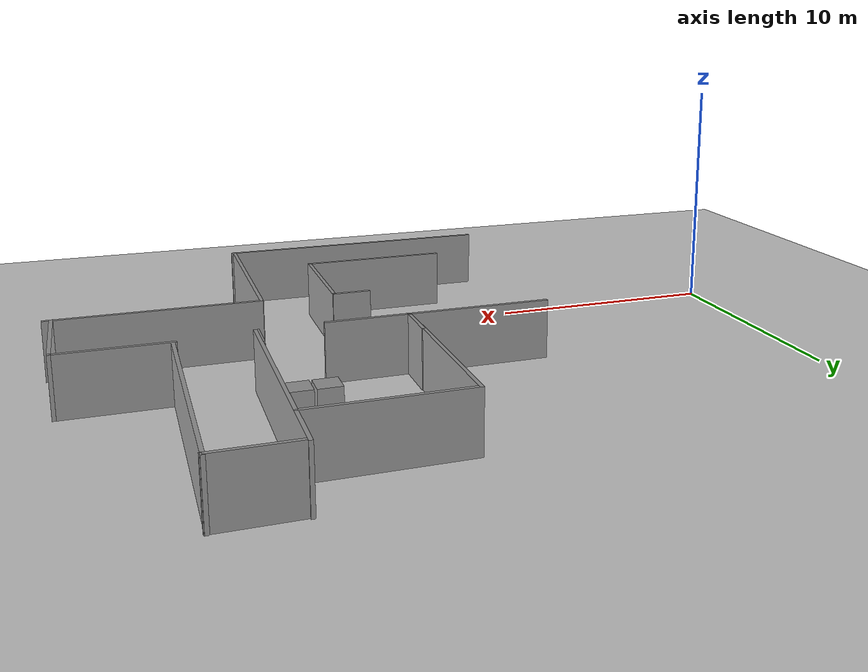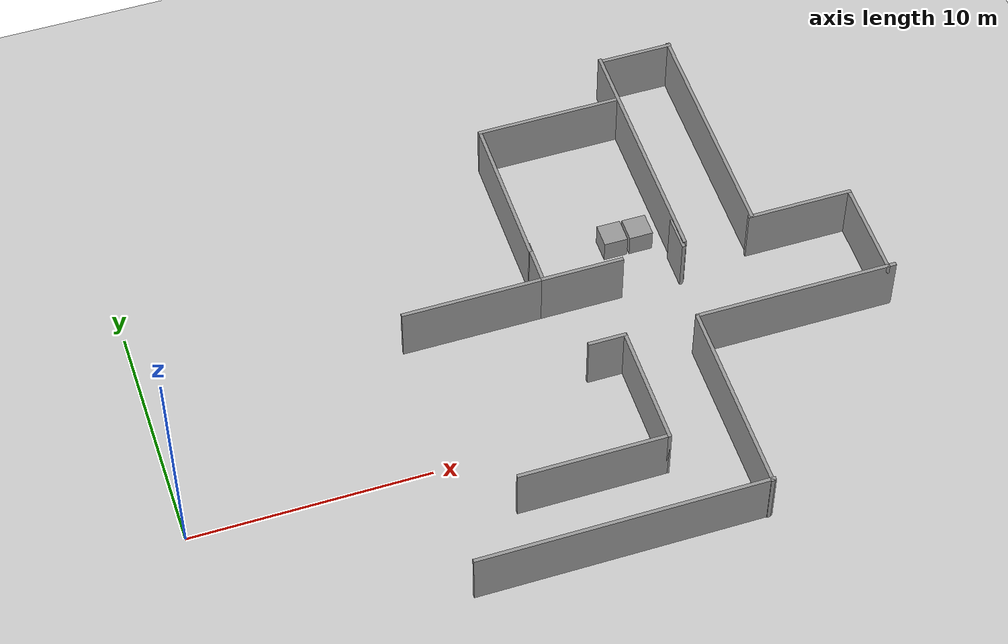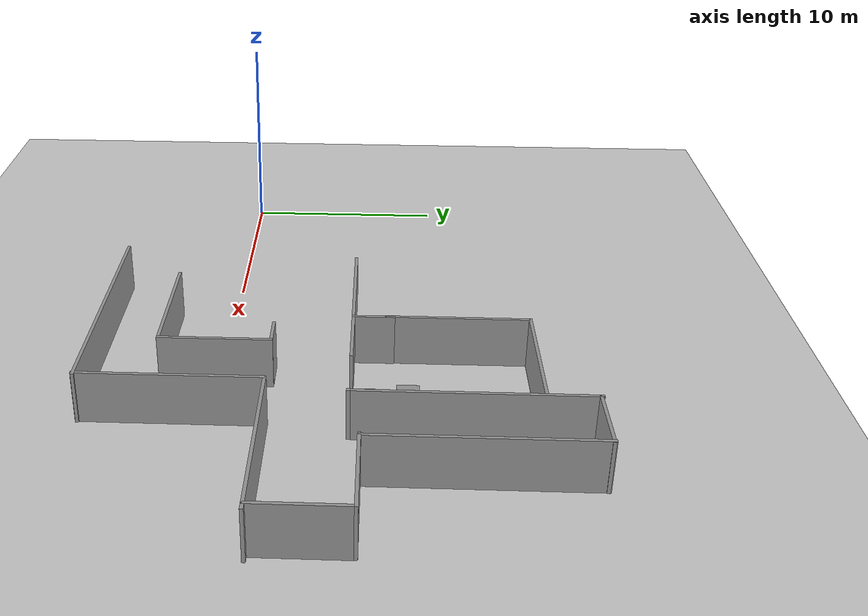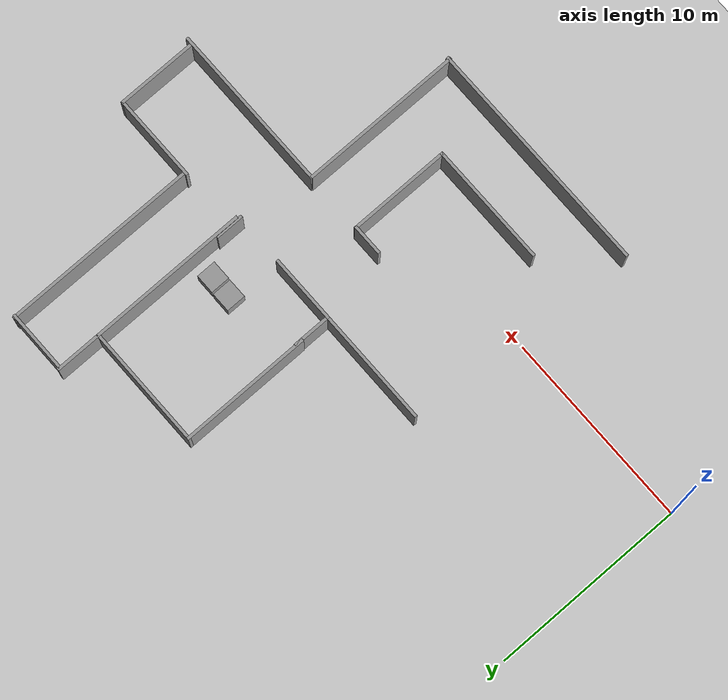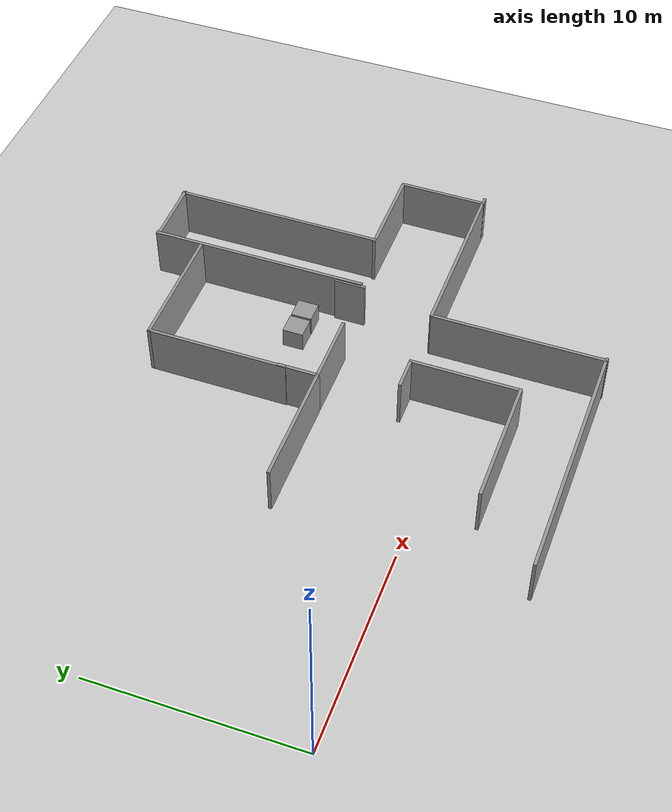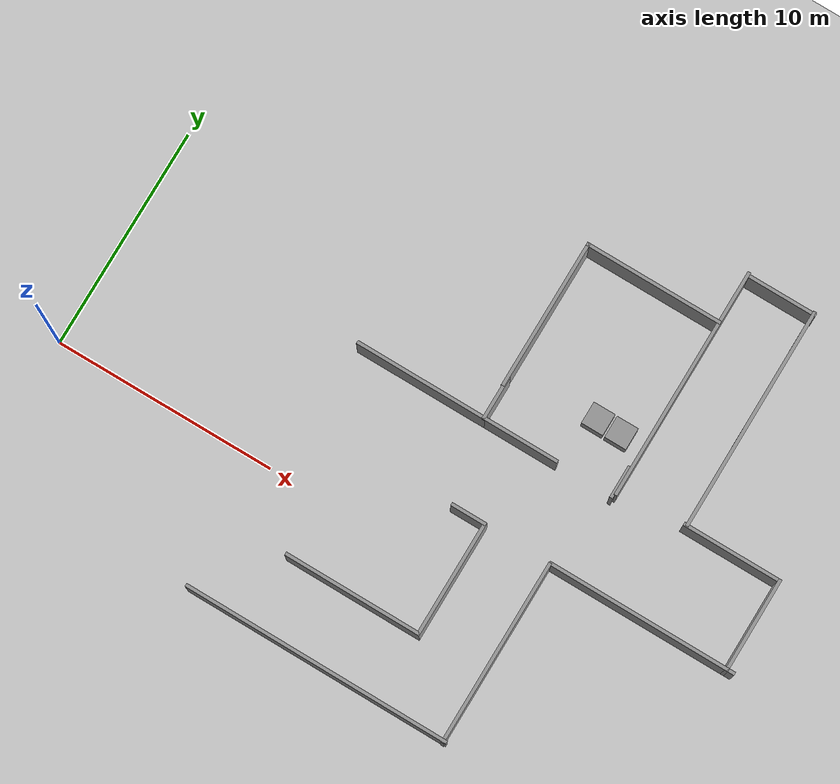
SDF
<sdf version="1.7">
 <world name="default">
  <model name="ground_plane">
   <static>1</static>
   <link name="link">
    <collision name="collision">
     <geometry><plane><normal>0 0 1</normal><size>100 100</size></plane></geometry>
     <surface><friction><ode><mu>100</mu><mu2>50</mu2></ode></friction></surface>
    </collision>
    <visual name="visual">
     <cast_shadows>0</cast_shadows>
     <geometry><plane><normal>0 0 1</normal><size>100 100</size></plane></geometry>
     <material>
      <script><uri>file://media/materials/scripts/gazebo.material</uri><name>Gazebo/Grey</name></script>
     </material>
    </visual>
   </link>
  </model>
  <model name="clutter_env023">
   <link name="Wall_11">
    <pose>15.101 5.75731 0 0 -0 1.5708</pose>
    <inertial>
     <inertia><ixx>0</ixx><ixy>0</ixy><ixz>0</ixz><iyy>0</iyy><iyz>0</iyz><izz>0</izz></inertia>
     <mass>0</mass>
    </inertial>
    <visual name="Wall_11_Visual">
     <pose>0 0 1.25 0 -0 0</pose>
     <geometry><box><size>10.0758 0.15 2.5</size></box></geometry>
     <material>
      <script><uri>file://media/materials/scripts/gazebo.material</uri><name>Gazebo/Grey</name></script>
      <ambient>1 1 1 1</ambient>
      <shader type="pixel"/>
     </material>
     <meta><layer>0</layer></meta>
    </visual>
    <collision name="Wall_11_Collision">
     <pose>0 0 1.25 0 -0 0</pose>
     <geometry><box><size>10.0758 0.15 2.5</size></box></geometry>
     <surface>
      <friction>
       <ode><mu>1</mu><mu2>1</mu2><fdir1>0 0 0</fdir1><slip1>0</slip1><slip2>0</slip2></ode>
       <torsional>
        <coefficient>1</coefficient>
        <patch_radius>0</patch_radius>
        <surface_radius>0</surface_radius>
        <use_patch_radius>1</use_patch_radius>
        <ode><slip>0</slip></ode>
       </torsional>
      </friction>
      <bounce><restitution_coefficient>0</restitution_coefficient><threshold>1e+06</threshold></bounce>
      <contact>
       <collide_without_contact>0</collide_without_contact>
       <collide_without_contact_bitmask>1</collide_without_contact_bitmask>
       <collide_bitmask>1</collide_bitmask>
       <ode>
        <soft_cfm>0</soft_cfm>
        <soft_erp>0.2</soft_erp>
        <kp>1e+13</kp>
        <kd>1</kd>
        <max_vel>0.01</max_vel>
        <min_depth>0</min_depth>
       </ode>
       <bullet>
        <split_impulse>1</split_impulse>
        <split_impulse_penetration_threshold>-0.01</split_impulse_penetration_threshold>
        <soft_cfm>0</soft_cfm>
        <soft_erp>0.2</soft_erp>
        <kp>1e+13</kp>
        <kd>1</kd>
       </bullet>
      </contact>
     </surface>
    </collision>
   </link>
   <link name="Wall_13">
    <pose>12.0364 5.56961 0 0 -0 1.5708</pose>
    <inertial>
     <inertia><ixx>0</ixx><ixy>0</ixy><ixz>0</ixz><iyy>0</iyy><iyz>0</iyz><izz>0</izz></inertia>
     <mass>0</mass>
    </inertial>
    <visual name="Wall_13_Visual">
     <pose>0 0 1.25 0 -0 0</pose>
     <geometry><box><size>10.4977 0.15 2.5</size></box></geometry>
     <material>
      <script><uri>file://media/materials/scripts/gazebo.material</uri><name>Gazebo/Grey</name></script>
      <ambient>1 1 1 1</ambient>
      <shader type="pixel"/>
     </material>
     <meta><layer>0</layer></meta>
    </visual>
    <collision name="Wall_13_Collision">
     <pose>0 0 1.25 0 -0 0</pose>
     <geometry><box><size>10.4977 0.15 2.5</size></box></geometry>
     <surface>
      <friction>
       <ode><mu>1</mu><mu2>1</mu2><fdir1>0 0 0</fdir1><slip1>0</slip1><slip2>0</slip2></ode>
       <torsional>
        <coefficient>1</coefficient>
        <patch_radius>0</patch_radius>
        <surface_radius>0</surface_radius>
        <use_patch_radius>1</use_patch_radius>
        <ode><slip>0</slip></ode>
       </torsional>
      </friction>
      <bounce><restitution_coefficient>0</restitution_coefficient><threshold>1e+06</threshold></bounce>
      <contact>
       <collide_without_contact>0</collide_without_contact>
       <collide_without_contact_bitmask>1</collide_without_contact_bitmask>
       <collide_bitmask>1</collide_bitmask>
       <ode>
        <soft_cfm>0</soft_cfm>
        <soft_erp>0.2</soft_erp>
        <kp>1e+13</kp>
        <kd>1</kd>
        <max_vel>0.01</max_vel>
        <min_depth>0</min_depth>
       </ode>
       <bullet>
        <split_impulse>1</split_impulse>
        <split_impulse_penetration_threshold>-0.01</split_impulse_penetration_threshold>
        <soft_cfm>0</soft_cfm>
        <soft_erp>0.2</soft_erp>
        <kp>1e+13</kp>
        <kd>1</kd>
       </bullet>
      </contact>
     </surface>
    </collision>
   </link>
   <link name="Wall_14">
    <pose>8.975 8.45 0 0 -0 3.14159</pose>
    <visual name="Wall_14_Visual">
     <pose>0 0 1.25 0 -0 0</pose>
     <geometry><box><size>6.25 0.15 2.5</size></box></geometry>
     <material>
      <script><uri>file://media/materials/scripts/gazebo.material</uri><name>Gazebo/Grey</name></script>
      <ambient>1 1 1 1</ambient>
      <shader type="pixel"/>
     </material>
     <meta><layer>0</layer></meta>
    </visual>
    <collision name="Wall_14_Collision">
     <pose>0 0 1.25 0 -0 0</pose>
     <geometry><box><size>6.25 0.15 2.5</size></box></geometry>
     <surface>
      <friction>
       <ode><mu>1</mu><mu2>1</mu2><fdir1>0 0 0</fdir1><slip1>0</slip1><slip2>0</slip2></ode>
       <torsional>
        <coefficient>1</coefficient>
        <patch_radius>0</patch_radius>
        <surface_radius>0</surface_radius>
        <use_patch_radius>1</use_patch_radius>
        <ode><slip>0</slip></ode>
       </torsional>
      </friction>
      <bounce><restitution_coefficient>0</restitution_coefficient><threshold>1e+06</threshold></bounce>
      <contact>
       <collide_without_contact>0</collide_without_contact>
       <collide_without_contact_bitmask>1</collide_without_contact_bitmask>
       <collide_bitmask>1</collide_bitmask>
       <ode>
        <soft_cfm>0</soft_cfm>
        <soft_erp>0.2</soft_erp>
        <kp>1e+13</kp>
        <kd>1</kd>
        <max_vel>0.01</max_vel>
        <min_depth>0</min_depth>
       </ode>
       <bullet>
        <split_impulse>1</split_impulse>
        <split_impulse_penetration_threshold>-0.01</split_impulse_penetration_threshold>
        <soft_cfm>0</soft_cfm>
        <soft_erp>0.2</soft_erp>
        <kp>1e+13</kp>
        <kd>1</kd>
       </bullet>
      </contact>
     </surface>
    </collision>
   </link>
   <link name="Wall_15">
    <pose>5.925 5.15 0 0 0 -1.5708</pose>
    <visual name="Wall_15_Visual">
     <pose>0 0 1.25 0 -0 0</pose>
     <geometry><box><size>6.75 0.15 2.5</size></box></geometry>
     <material>
      <script><uri>file://media/materials/scripts/gazebo.material</uri><name>Gazebo/Grey</name></script>
      <ambient>1 1 1 1</ambient>
      <shader type="pixel"/>
     </material>
     <meta><layer>0</layer></meta>
    </visual>
    <collision name="Wall_15_Collision">
     <pose>0 0 1.25 0 -0 0</pose>
     <geometry><box><size>6.75 0.15 2.5</size></box></geometry>
     <surface>
      <friction>
       <ode><mu>1</mu><mu2>1</mu2><fdir1>0 0 0</fdir1><slip1>0</slip1><slip2>0</slip2></ode>
       <torsional>
        <coefficient>1</coefficient>
        <patch_radius>0</patch_radius>
        <surface_radius>0</surface_radius>
        <use_patch_radius>1</use_patch_radius>
        <ode><slip>0</slip></ode>
       </torsional>
      </friction>
      <bounce><restitution_coefficient>0</restitution_coefficient><threshold>1e+06</threshold></bounce>
      <contact>
       <collide_without_contact>0</collide_without_contact>
       <collide_without_contact_bitmask>1</collide_without_contact_bitmask>
       <collide_bitmask>1</collide_bitmask>
       <ode>
        <soft_cfm>0</soft_cfm>
        <soft_erp>0.2</soft_erp>
        <kp>1e+13</kp>
        <kd>1</kd>
        <max_vel>0.01</max_vel>
        <min_depth>0</min_depth>
       </ode>
       <bullet>
        <split_impulse>1</split_impulse>
        <split_impulse_penetration_threshold>-0.01</split_impulse_penetration_threshold>
        <soft_cfm>0</soft_cfm>
        <soft_erp>0.2</soft_erp>
        <kp>1e+13</kp>
        <kd>1</kd>
       </bullet>
      </contact>
     </surface>
    </collision>
   </link>
   <link name="Wall_27">
    <pose>3.03081 0.283447 0 0 -0 0</pose>
    <visual name="Wall_27_Visual">
     <pose>0 0 1.25 0 -0 0</pose>
     <geometry><box><size>6 0.15 2.5</size></box></geometry>
     <material>
      <script><uri>file://media/materials/scripts/gazebo.material</uri><name>Gazebo/Grey</name></script>
      <ambient>1 1 1 1</ambient>
      <shader type="pixel"/>
     </material>
     <meta><layer>0</layer></meta>
    </visual>
    <collision name="Wall_27_Collision">
     <pose>0 0 1.25 0 -0 0</pose>
     <geometry><box><size>6 0.15 2.5</size></box></geometry>
     <surface>
      <friction>
       <ode><mu>1</mu><mu2>1</mu2><fdir1>0 0 0</fdir1><slip1>0</slip1><slip2>0</slip2></ode>
       <torsional>
        <coefficient>1</coefficient>
        <patch_radius>0</patch_radius>
        <surface_radius>0</surface_radius>
        <use_patch_radius>1</use_patch_radius>
        <ode><slip>0</slip></ode>
       </torsional>
      </friction>
      <bounce><restitution_coefficient>0</restitution_coefficient><threshold>1e+06</threshold></bounce>
      <contact>
       <collide_without_contact>0</collide_without_contact>
       <collide_without_contact_bitmask>1</collide_without_contact_bitmask>
       <collide_bitmask>1</collide_bitmask>
       <ode>
        <soft_cfm>0</soft_cfm>
        <soft_erp>0.2</soft_erp>
        <kp>1e+13</kp>
        <kd>1</kd>
        <max_vel>0.01</max_vel>
        <min_depth>0</min_depth>
       </ode>
       <bullet>
        <split_impulse>1</split_impulse>
        <split_impulse_penetration_threshold>-0.01</split_impulse_penetration_threshold>
        <soft_cfm>0</soft_cfm>
        <soft_erp>0.2</soft_erp>
        <kp>1e+13</kp>
        <kd>1</kd>
       </bullet>
      </contact>
     </surface>
    </collision>
   </link>
   <link name="Wall_28">
    <pose>5.95581 1.20845 0 0 -0 1.5708</pose>
    <visual name="Wall_28_Visual">
     <pose>0 0 1.25 0 -0 0</pose>
     <geometry><box><size>2 0.15 2.5</size></box></geometry>
     <material>
      <script><uri>file://media/materials/scripts/gazebo.material</uri><name>Gazebo/Grey</name></script>
      <ambient>1 1 1 1</ambient>
      <shader type="pixel"/>
     </material>
     <meta><layer>0</layer></meta>
    </visual>
    <collision name="Wall_28_Collision">
     <pose>0 0 1.25 0 -0 0</pose>
     <geometry><box><size>2 0.15 2.5</size></box></geometry>
     <surface>
      <friction>
       <ode><mu>1</mu><mu2>1</mu2><fdir1>0 0 0</fdir1><slip1>0</slip1><slip2>0</slip2></ode>
       <torsional>
        <coefficient>1</coefficient>
        <patch_radius>0</patch_radius>
        <surface_radius>0</surface_radius>
        <use_patch_radius>1</use_patch_radius>
        <ode><slip>0</slip></ode>
       </torsional>
      </friction>
      <bounce><restitution_coefficient>0</restitution_coefficient><threshold>1e+06</threshold></bounce>
      <contact>
       <collide_without_contact>0</collide_without_contact>
       <collide_without_contact_bitmask>1</collide_without_contact_bitmask>
       <collide_bitmask>1</collide_bitmask>
       <ode>
        <soft_cfm>0</soft_cfm>
        <soft_erp>0.2</soft_erp>
        <kp>1e+13</kp>
        <kd>1</kd>
        <max_vel>0.01</max_vel>
        <min_depth>0</min_depth>
       </ode>
       <bullet>
        <split_impulse>1</split_impulse>
        <split_impulse_penetration_threshold>-0.01</split_impulse_penetration_threshold>
        <soft_cfm>0</soft_cfm>
        <soft_erp>0.2</soft_erp>
        <kp>1e+13</kp>
        <kd>1</kd>
       </bullet>
      </contact>
     </surface>
    </collision>
   </link>
   <link name="Wall_2_clone_0_clone">
    <pose>11.2085 -7.50081 0 0 -0 1.5708</pose>
    <inertial>
     <inertia><ixx>0</ixx><ixy>0</ixy><ixz>0</ixz><iyy>0</iyy><iyz>0</iyz><izz>0</izz></inertia>
     <mass>0</mass>
    </inertial>
    <visual name="Wall_2_Visual">
     <pose>0 0 1.25 0 -0 0</pose>
     <geometry><box><size>8.33804 0.15 2.5</size></box></geometry>
     <material>
      <script><uri>file://media/materials/scripts/gazebo.material</uri><name>Gazebo/Grey</name></script>
      <ambient>1 1 1 1</ambient>
      <shader type="pixel"/>
     </material>
     <meta><layer>0</layer></meta>
    </visual>
    <collision name="Wall_2_Collision">
     <pose>0 0 1.25 0 -0 0</pose>
     <geometry><box><size>8.33804 0.15 2.5</size></box></geometry>
     <surface>
      <friction>
       <ode><mu>1</mu><mu2>1</mu2><fdir1>0 0 0</fdir1><slip1>0</slip1><slip2>0</slip2></ode>
       <torsional>
        <coefficient>1</coefficient>
        <patch_radius>0</patch_radius>
        <surface_radius>0</surface_radius>
        <use_patch_radius>1</use_patch_radius>
        <ode><slip>0</slip></ode>
       </torsional>
      </friction>
      <bounce><restitution_coefficient>0</restitution_coefficient><threshold>1e+06</threshold></bounce>
      <contact>
       <collide_without_contact>0</collide_without_contact>
       <collide_without_contact_bitmask>1</collide_without_contact_bitmask>
       <collide_bitmask>1</collide_bitmask>
       <ode>
        <soft_cfm>0</soft_cfm>
        <soft_erp>0.2</soft_erp>
        <kp>1e+13</kp>
        <kd>1</kd>
        <max_vel>0.01</max_vel>
        <min_depth>0</min_depth>
       </ode>
       <bullet>
        <split_impulse>1</split_impulse>
        <split_impulse_penetration_threshold>-0.01</split_impulse_penetration_threshold>
        <soft_cfm>0</soft_cfm>
        <soft_erp>0.2</soft_erp>
        <kp>1e+13</kp>
        <kd>1</kd>
       </bullet>
      </contact>
     </surface>
    </collision>
   </link>
   <link name="Wall_30">
    <pose>7.63081 0.283447 0 0 -0 0</pose>
    <visual name="Wall_30_Visual">
     <pose>0 0 1.25 0 -0 0</pose>
     <geometry><box><size>3.5 0.15 2.5</size></box></geometry>
     <material>
      <script><uri>file://media/materials/scripts/gazebo.material</uri><name>Gazebo/Grey</name></script>
      <ambient>1 1 1 1</ambient>
      <shader type="pixel"/>
     </material>
     <meta><layer>0</layer></meta>
    </visual>
    <collision name="Wall_30_Collision">
     <pose>0 0 1.25 0 -0 0</pose>
     <geometry><box><size>3.5 0.15 2.5</size></box></geometry>
     <surface>
      <friction>
       <ode><mu>1</mu><mu2>1</mu2><fdir1>0 0 0</fdir1><slip1>0</slip1><slip2>0</slip2></ode>
       <torsional>
        <coefficient>1</coefficient>
        <patch_radius>0</patch_radius>
        <surface_radius>0</surface_radius>
        <use_patch_radius>1</use_patch_radius>
        <ode><slip>0</slip></ode>
       </torsional>
      </friction>
      <bounce><restitution_coefficient>0</restitution_coefficient><threshold>1e+06</threshold></bounce>
      <contact>
       <collide_without_contact>0</collide_without_contact>
       <collide_without_contact_bitmask>1</collide_without_contact_bitmask>
       <collide_bitmask>1</collide_bitmask>
       <ode>
        <soft_cfm>0</soft_cfm>
        <soft_erp>0.2</soft_erp>
        <kp>1e+13</kp>
        <kd>1</kd>
        <max_vel>0.01</max_vel>
        <min_depth>0</min_depth>
       </ode>
       <bullet>
        <split_impulse>1</split_impulse>
        <split_impulse_penetration_threshold>-0.01</split_impulse_penetration_threshold>
        <soft_cfm>0</soft_cfm>
        <soft_erp>0.2</soft_erp>
        <kp>1e+13</kp>
        <kd>1</kd>
       </bullet>
      </contact>
     </surface>
    </collision>
   </link>
   <link name="Wall_36">
    <pose>15.45 -3.35 0 0 -0 0</pose>
    <inertial>
     <inertia><ixx>0</ixx><ixy>0</ixy><ixz>0</ixz><iyy>0</iyy><iyz>0</iyz><izz>0</izz></inertia>
     <mass>0</mass>
    </inertial>
    <visual name="Wall_36_Visual">
     <pose>0 0 1.25 0 -0 0</pose>
     <geometry><box><size>8.5701 0.15 2.5</size></box></geometry>
     <material>
      <script><uri>file://media/materials/scripts/gazebo.material</uri><name>Gazebo/Grey</name></script>
      <ambient>1 1 1 1</ambient>
      <shader type="pixel"/>
     </material>
     <meta><layer>0</layer></meta>
    </visual>
    <collision name="Wall_36_Collision">
     <pose>0 0 1.25 0 -0 0</pose>
     <geometry><box><size>8.5701 0.15 2.5</size></box></geometry>
     <surface>
      <friction>
       <ode><mu>1</mu><mu2>1</mu2><fdir1>0 0 0</fdir1><slip1>0</slip1><slip2>0</slip2></ode>
       <torsional>
        <coefficient>1</coefficient>
        <patch_radius>0</patch_radius>
        <surface_radius>0</surface_radius>
        <use_patch_radius>1</use_patch_radius>
        <ode><slip>0</slip></ode>
       </torsional>
      </friction>
      <bounce><restitution_coefficient>0</restitution_coefficient><threshold>1e+06</threshold></bounce>
      <contact>
       <collide_without_contact>0</collide_without_contact>
       <collide_without_contact_bitmask>1</collide_without_contact_bitmask>
       <collide_bitmask>1</collide_bitmask>
       <ode>
        <soft_cfm>0</soft_cfm>
        <soft_erp>0.2</soft_erp>
        <kp>1e+13</kp>
        <kd>1</kd>
        <max_vel>0.01</max_vel>
        <min_depth>0</min_depth>
       </ode>
       <bullet>
        <split_impulse>1</split_impulse>
        <split_impulse_penetration_threshold>-0.01</split_impulse_penetration_threshold>
        <soft_cfm>0</soft_cfm>
        <soft_erp>0.2</soft_erp>
        <kp>1e+13</kp>
        <kd>1</kd>
       </bullet>
      </contact>
     </surface>
    </collision>
   </link>
   <link name="Wall_37">
    <pose>19.375 -1.3 0 0 -0 1.5708</pose>
    <visual name="Wall_37_Visual">
     <pose>0 0 1.25 0 -0 0</pose>
     <geometry><box><size>4.25 0.15 2.5</size></box></geometry>
     <material>
      <script><uri>file://media/materials/scripts/gazebo.material</uri><name>Gazebo/Grey</name></script>
      <ambient>1 1 1 1</ambient>
      <shader type="pixel"/>
     </material>
     <meta><layer>0</layer></meta>
    </visual>
    <collision name="Wall_37_Collision">
     <pose>0 0 1.25 0 -0 0</pose>
     <geometry><box><size>4.25 0.15 2.5</size></box></geometry>
     <surface>
      <friction>
       <ode><mu>1</mu><mu2>1</mu2><fdir1>0 0 0</fdir1><slip1>0</slip1><slip2>0</slip2></ode>
       <torsional>
        <coefficient>1</coefficient>
        <patch_radius>0</patch_radius>
        <surface_radius>0</surface_radius>
        <use_patch_radius>1</use_patch_radius>
        <ode><slip>0</slip></ode>
       </torsional>
      </friction>
      <bounce><restitution_coefficient>0</restitution_coefficient><threshold>1e+06</threshold></bounce>
      <contact>
       <collide_without_contact>0</collide_without_contact>
       <collide_without_contact_bitmask>1</collide_without_contact_bitmask>
       <collide_bitmask>1</collide_bitmask>
       <ode>
        <soft_cfm>0</soft_cfm>
        <soft_erp>0.2</soft_erp>
        <kp>1e+13</kp>
        <kd>1</kd>
        <max_vel>0.01</max_vel>
        <min_depth>0</min_depth>
       </ode>
       <bullet>
        <split_impulse>1</split_impulse>
        <split_impulse_penetration_threshold>-0.01</split_impulse_penetration_threshold>
        <soft_cfm>0</soft_cfm>
        <soft_erp>0.2</soft_erp>
        <kp>1e+13</kp>
        <kd>1</kd>
       </bullet>
      </contact>
     </surface>
    </collision>
   </link>
   <link name="Wall_38">
    <pose>17.2 0.75 0 0 -0 3.14159</pose>
    <visual name="Wall_38_Visual">
     <pose>0 0 1.25 0 -0 0</pose>
     <geometry><box><size>4.5 0.15 2.5</size></box></geometry>
     <material>
      <script><uri>file://media/materials/scripts/gazebo.material</uri><name>Gazebo/Grey</name></script>
      <ambient>1 1 1 1</ambient>
      <shader type="pixel"/>
     </material>
     <meta><layer>0</layer></meta>
    </visual>
    <collision name="Wall_38_Collision">
     <pose>0 0 1.25 0 -0 0</pose>
     <geometry><box><size>4.5 0.15 2.5</size></box></geometry>
     <surface>
      <friction>
       <ode><mu>1</mu><mu2>1</mu2><fdir1>0 0 0</fdir1><slip1>0</slip1><slip2>0</slip2></ode>
       <torsional>
        <coefficient>1</coefficient>
        <patch_radius>0</patch_radius>
        <surface_radius>0</surface_radius>
        <use_patch_radius>1</use_patch_radius>
        <ode><slip>0</slip></ode>
       </torsional>
      </friction>
      <bounce><restitution_coefficient>0</restitution_coefficient><threshold>1e+06</threshold></bounce>
      <contact>
       <collide_without_contact>0</collide_without_contact>
       <collide_without_contact_bitmask>1</collide_without_contact_bitmask>
       <collide_bitmask>1</collide_bitmask>
       <ode>
        <soft_cfm>0</soft_cfm>
        <soft_erp>0.2</soft_erp>
        <kp>1e+13</kp>
        <kd>1</kd>
        <max_vel>0.01</max_vel>
        <min_depth>0</min_depth>
       </ode>
       <bullet>
        <split_impulse>1</split_impulse>
        <split_impulse_penetration_threshold>-0.01</split_impulse_penetration_threshold>
        <soft_cfm>0</soft_cfm>
        <soft_erp>0.2</soft_erp>
        <kp>1e+13</kp>
        <kd>1</kd>
       </bullet>
      </contact>
     </surface>
    </collision>
   </link>
   <link name="Wall_38_clone_0">
    <pose>13.6151 10.6788 0 0 -0 3.14159</pose>
    <inertial>
     <inertia><ixx>0</ixx><ixy>0</ixy><ixz>0</ixz><iyy>0</iyy><iyz>0</iyz><izz>0</izz></inertia>
     <mass>0</mass>
    </inertial>
    <visual name="Wall_38_Visual">
     <pose>0 0 1.25 0 -0 0</pose>
     <geometry><box><size>3.18645 0.15 2.5</size></box></geometry>
     <material>
      <script><uri>file://media/materials/scripts/gazebo.material</uri><name>Gazebo/Grey</name></script>
      <ambient>1 1 1 1</ambient>
      <shader type="pixel"/>
     </material>
     <meta><layer>0</layer></meta>
    </visual>
    <collision name="Wall_38_Collision">
     <pose>0 0 1.25 0 -0 0</pose>
     <geometry><box><size>3.18645 0.15 2.5</size></box></geometry>
     <surface>
      <friction>
       <ode><mu>1</mu><mu2>1</mu2><fdir1>0 0 0</fdir1><slip1>0</slip1><slip2>0</slip2></ode>
       <torsional>
        <coefficient>1</coefficient>
        <patch_radius>0</patch_radius>
        <surface_radius>0</surface_radius>
        <use_patch_radius>1</use_patch_radius>
        <ode><slip>0</slip></ode>
       </torsional>
      </friction>
      <bounce><restitution_coefficient>0</restitution_coefficient><threshold>1e+06</threshold></bounce>
      <contact>
       <collide_without_contact>0</collide_without_contact>
       <collide_without_contact_bitmask>1</collide_without_contact_bitmask>
       <collide_bitmask>1</collide_bitmask>
       <ode>
        <soft_cfm>0</soft_cfm>
        <soft_erp>0.2</soft_erp>
        <kp>1e+13</kp>
        <kd>1</kd>
        <max_vel>0.01</max_vel>
        <min_depth>0</min_depth>
       </ode>
       <bullet>
        <split_impulse>1</split_impulse>
        <split_impulse_penetration_threshold>-0.01</split_impulse_penetration_threshold>
        <soft_cfm>0</soft_cfm>
        <soft_erp>0.2</soft_erp>
        <kp>1e+13</kp>
        <kd>1</kd>
       </bullet>
      </contact>
     </surface>
    </collision>
   </link>
   <link name="Wall_41">
    <pose>11.9374 0.87758 -0.053684 0 -0 1.5708</pose>
    <inertial>
     <inertia><ixx>0</ixx><ixy>0</ixy><ixz>0</ixz><iyy>0</iyy><iyz>0</iyz><izz>0</izz></inertia>
     <mass>0</mass>
    </inertial>
    <visual name="Wall_41_Visual">
     <pose>0 0 1.25 0 -0 0</pose>
     <geometry><box><size>1.47125 0.15 2.5</size></box></geometry>
     <material>
      <script><uri>file://media/materials/scripts/gazebo.material</uri><name>Gazebo/Grey</name></script>
      <ambient>1 1 1 1</ambient>
      <shader type="pixel"/>
     </material>
     <meta><layer>0</layer></meta>
    </visual>
    <collision name="Wall_41_Collision">
     <pose>0 0 1.25 0 -0 0</pose>
     <geometry><box><size>1.47125 0.15 2.5</size></box></geometry>
     <surface>
      <friction>
       <ode><mu>1</mu><mu2>1</mu2><fdir1>0 0 0</fdir1><slip1>0</slip1><slip2>0</slip2></ode>
       <torsional>
        <coefficient>1</coefficient>
        <patch_radius>0</patch_radius>
        <surface_radius>0</surface_radius>
        <use_patch_radius>1</use_patch_radius>
        <ode><slip>0</slip></ode>
       </torsional>
      </friction>
      <bounce><restitution_coefficient>0</restitution_coefficient><threshold>1e+06</threshold></bounce>
      <contact>
       <collide_without_contact>0</collide_without_contact>
       <collide_without_contact_bitmask>1</collide_without_contact_bitmask>
       <collide_bitmask>1</collide_bitmask>
       <ode>
        <soft_cfm>0</soft_cfm>
        <soft_erp>0.2</soft_erp>
        <kp>1e+13</kp>
        <kd>1</kd>
        <max_vel>0.01</max_vel>
        <min_depth>0</min_depth>
       </ode>
       <bullet>
        <split_impulse>1</split_impulse>
        <split_impulse_penetration_threshold>-0.01</split_impulse_penetration_threshold>
        <soft_cfm>0</soft_cfm>
        <soft_erp>0.2</soft_erp>
        <kp>1e+13</kp>
        <kd>1</kd>
       </bullet>
      </contact>
     </surface>
    </collision>
   </link>
   <link name="Wall_4_clone">
    <pose>5.30928 -11.5616 0 0 -0 0</pose>
    <inertial>
     <inertia><ixx>0</ixx><ixy>0</ixy><ixz>0</ixz><iyy>0</iyy><iyz>0</iyz><izz>0</izz></inertia>
     <mass>0</mass>
    </inertial>
    <visual name="Wall_4_Visual">
     <pose>0 0 1.25 0 -0 0</pose>
     <geometry><box><size>12.0947 0.15 2.5</size></box></geometry>
     <material>
      <script><uri>file://media/materials/scripts/gazebo.material</uri><name>Gazebo/Grey</name></script>
      <ambient>1 1 1 1</ambient>
      <shader type="pixel"/>
     </material>
     <meta><layer>0</layer></meta>
    </visual>
    <collision name="Wall_4_Collision">
     <pose>0 0 1.25 0 -0 0</pose>
     <geometry><box><size>12.0947 0.15 2.5</size></box></geometry>
     <surface>
      <friction>
       <ode><mu>1</mu><mu2>1</mu2><fdir1>0 0 0</fdir1><slip1>0</slip1><slip2>0</slip2></ode>
       <torsional>
        <coefficient>1</coefficient>
        <patch_radius>0</patch_radius>
        <surface_radius>0</surface_radius>
        <use_patch_radius>1</use_patch_radius>
        <ode><slip>0</slip></ode>
       </torsional>
      </friction>
      <bounce><restitution_coefficient>0</restitution_coefficient><threshold>1e+06</threshold></bounce>
      <contact>
       <collide_without_contact>0</collide_without_contact>
       <collide_without_contact_bitmask>1</collide_without_contact_bitmask>
       <collide_bitmask>1</collide_bitmask>
       <ode>
        <soft_cfm>0</soft_cfm>
        <soft_erp>0.2</soft_erp>
        <kp>1e+13</kp>
        <kd>1</kd>
        <max_vel>0.01</max_vel>
        <min_depth>0</min_depth>
       </ode>
       <bullet>
        <split_impulse>1</split_impulse>
        <split_impulse_penetration_threshold>-0.01</split_impulse_penetration_threshold>
        <soft_cfm>0</soft_cfm>
        <soft_erp>0.2</soft_erp>
        <kp>1e+13</kp>
        <kd>1</kd>
       </bullet>
      </contact>
     </surface>
    </collision>
   </link>
   <link name="Wall_6">
    <pose>5.125 -8.45 0 0 -0 0</pose>
    <visual name="Wall_6_Visual">
     <pose>0 0 1.25 0 -0 0</pose>
     <geometry><box><size>6.25 0.15 2.5</size></box></geometry>
     <material>
      <script><uri>file://media/materials/scripts/gazebo.material</uri><name>Gazebo/Grey</name></script>
      <ambient>1 1 1 1</ambient>
      <shader type="pixel"/>
     </material>
     <meta><layer>0</layer></meta>
    </visual>
    <collision name="Wall_6_Collision">
     <pose>0 0 1.25 0 -0 0</pose>
     <geometry><box><size>6.25 0.15 2.5</size></box></geometry>
     <surface>
      <friction>
       <ode><mu>1</mu><mu2>1</mu2><fdir1>0 0 0</fdir1><slip1>0</slip1><slip2>0</slip2></ode>
       <torsional>
        <coefficient>1</coefficient>
        <patch_radius>0</patch_radius>
        <surface_radius>0</surface_radius>
        <use_patch_radius>1</use_patch_radius>
        <ode><slip>0</slip></ode>
       </torsional>
      </friction>
      <bounce><restitution_coefficient>0</restitution_coefficient><threshold>1e+06</threshold></bounce>
      <contact>
       <collide_without_contact>0</collide_without_contact>
       <collide_without_contact_bitmask>1</collide_without_contact_bitmask>
       <collide_bitmask>1</collide_bitmask>
       <ode>
        <soft_cfm>0</soft_cfm>
        <soft_erp>0.2</soft_erp>
        <kp>1e+13</kp>
        <kd>1</kd>
        <max_vel>0.01</max_vel>
        <min_depth>0</min_depth>
       </ode>
       <bullet>
        <split_impulse>1</split_impulse>
        <split_impulse_penetration_threshold>-0.01</split_impulse_penetration_threshold>
        <soft_cfm>0</soft_cfm>
        <soft_erp>0.2</soft_erp>
        <kp>1e+13</kp>
        <kd>1</kd>
       </bullet>
      </contact>
     </surface>
    </collision>
   </link>
   <link name="Wall_7">
    <pose>8.175 -5.9 0 0 -0 1.5708</pose>
    <visual name="Wall_7_Visual">
     <pose>0 0 1.25 0 -0 0</pose>
     <geometry><box><size>5.25 0.15 2.5</size></box></geometry>
     <material>
      <script><uri>file://media/materials/scripts/gazebo.material</uri><name>Gazebo/Grey</name></script>
      <ambient>1 1 1 1</ambient>
      <shader type="pixel"/>
     </material>
     <meta><layer>0</layer></meta>
    </visual>
    <collision name="Wall_7_Collision">
     <pose>0 0 1.25 0 -0 0</pose>
     <geometry><box><size>5.25 0.15 2.5</size></box></geometry>
     <surface>
      <friction>
       <ode><mu>1</mu><mu2>1</mu2><fdir1>0 0 0</fdir1><slip1>0</slip1><slip2>0</slip2></ode>
       <torsional>
        <coefficient>1</coefficient>
        <patch_radius>0</patch_radius>
        <surface_radius>0</surface_radius>
        <use_patch_radius>1</use_patch_radius>
        <ode><slip>0</slip></ode>
       </torsional>
      </friction>
      <bounce><restitution_coefficient>0</restitution_coefficient><threshold>1e+06</threshold></bounce>
      <contact>
       <collide_without_contact>0</collide_without_contact>
       <collide_without_contact_bitmask>1</collide_without_contact_bitmask>
       <collide_bitmask>1</collide_bitmask>
       <ode>
        <soft_cfm>0</soft_cfm>
        <soft_erp>0.2</soft_erp>
        <kp>1e+13</kp>
        <kd>1</kd>
        <max_vel>0.01</max_vel>
        <min_depth>0</min_depth>
       </ode>
       <bullet>
        <split_impulse>1</split_impulse>
        <split_impulse_penetration_threshold>-0.01</split_impulse_penetration_threshold>
        <soft_cfm>0</soft_cfm>
        <soft_erp>0.2</soft_erp>
        <kp>1e+13</kp>
        <kd>1</kd>
       </bullet>
      </contact>
     </surface>
    </collision>
   </link>
   <link name="Wall_8">
    <pose>7.42736 -3.34769 0 0 -0 0</pose>
    <inertial>
     <inertia><ixx>0</ixx><ixy>0</ixy><ixz>0</ixz><iyy>0</iyy><iyz>0</iyz><izz>0</izz></inertia>
     <mass>0</mass>
    </inertial>
    <visual name="Wall_8_Visual">
     <pose>0 0 1.25 0 -0 0</pose>
     <geometry><box><size>1.60893 0.15 2.5</size></box></geometry>
     <material>
      <script><uri>file://media/materials/scripts/gazebo.material</uri><name>Gazebo/Grey</name></script>
      <ambient>1 1 1 1</ambient>
      <shader type="pixel"/>
     </material>
     <meta><layer>0</layer></meta>
    </visual>
    <collision name="Wall_8_Collision">
     <pose>0 0 1.25 0 -0 0</pose>
     <geometry><box><size>1.60893 0.15 2.5</size></box></geometry>
     <surface>
      <friction>
       <ode><mu>1</mu><mu2>1</mu2><fdir1>0 0 0</fdir1><slip1>0</slip1><slip2>0</slip2></ode>
       <torsional>
        <coefficient>1</coefficient>
        <patch_radius>0</patch_radius>
        <surface_radius>0</surface_radius>
        <use_patch_radius>1</use_patch_radius>
        <ode><slip>0</slip></ode>
       </torsional>
      </friction>
      <bounce><restitution_coefficient>0</restitution_coefficient><threshold>1e+06</threshold></bounce>
      <contact>
       <collide_without_contact>0</collide_without_contact>
       <collide_without_contact_bitmask>1</collide_without_contact_bitmask>
       <collide_bitmask>1</collide_bitmask>
       <ode>
        <soft_cfm>0</soft_cfm>
        <soft_erp>0.2</soft_erp>
        <kp>1e+13</kp>
        <kd>1</kd>
        <max_vel>0.01</max_vel>
        <min_depth>0</min_depth>
       </ode>
       <bullet>
        <split_impulse>1</split_impulse>
        <split_impulse_penetration_threshold>-0.01</split_impulse_penetration_threshold>
        <soft_cfm>0</soft_cfm>
        <soft_erp>0.2</soft_erp>
        <kp>1e+13</kp>
        <kd>1</kd>
       </bullet>
      </contact>
     </surface>
    </collision>
   </link>
   <static>1</static>
   <pose>10.513 5.69176 0 0 -0 0</pose>
  </model>
  <model name="unit_box">
   <pose>20.345 8.48833 0.499995 0 1e-05 0</pose>
   <link name="link">
    <inertial>
     <mass>1</mass>
     <inertia>
      <ixx>0.166667</ixx>
      <ixy>0</ixy>
      <ixz>0</ixz>
      <iyy>0.166667</iyy>
      <iyz>0</iyz>
      <izz>0.166667</izz>
     </inertia>
    </inertial>
    <collision name="collision"><geometry><box><size>1 1 1</size></box></geometry></collision>
    <visual name="visual">
     <geometry><box><size>1 1 1</size></box></geometry>
     <material>
      <script><name>Gazebo/Grey</name><uri>file://media/materials/scripts/gazebo.material</uri></script>
     </material>
    </visual>
   </link>
  </model>
  <model name="unit_box_clone">
   <pose>21.4386 8.47683 0.499995 -1e-05 -0 -0</pose>
   <link name="link">
    <inertial>
     <mass>1</mass>
     <inertia>
      <ixx>0.166667</ixx>
      <ixy>0</ixy>
      <ixz>0</ixz>
      <iyy>0.166667</iyy>
      <iyz>0</iyz>
      <izz>0.166667</izz>
     </inertia>
    </inertial>
    <collision name="collision"><geometry><box><size>1 1 1</size></box></geometry></collision>
    <visual name="visual">
     <geometry><box><size>1 1 1</size></box></geometry>
     <material>
      <script><name>Gazebo/Grey</name><uri>file://media/materials/scripts/gazebo.material</uri></script>
     </material>
    </visual>
   </link>
  </model>
 </world>
</sdf>
